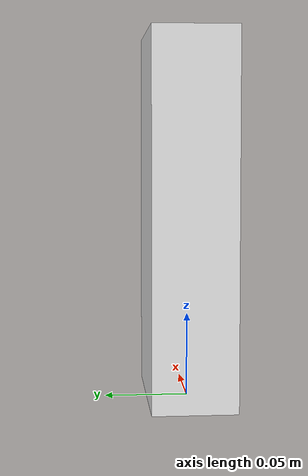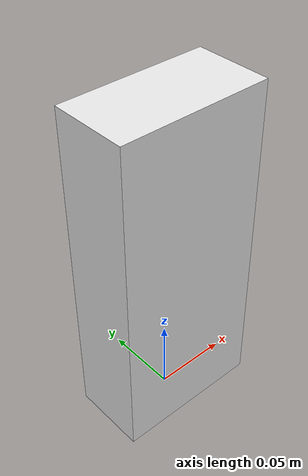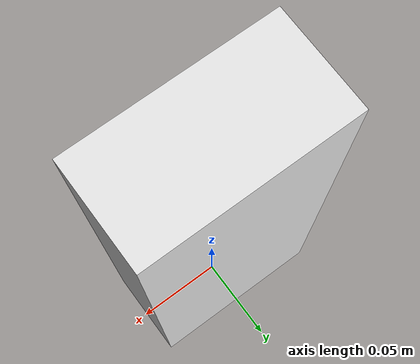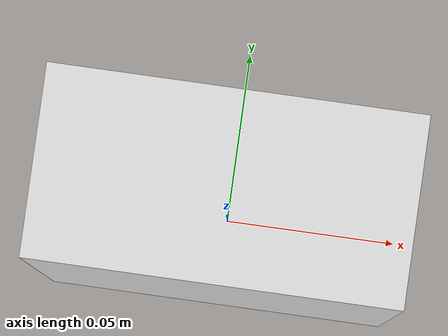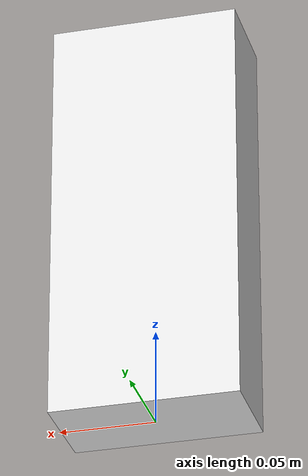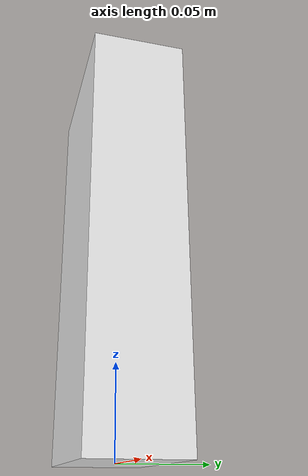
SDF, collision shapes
<?xml version="1.0"?>
<sdf version='1.6'>
<model name="simple_cuboid">
  <link name="base_link_bottle">
    <pose frame=''>0 0 0 0 -0 0</pose>
      <inertial>
        <pose frame=''>0 0 0.125 0 -0 0</pose>
        <mass>1.1</mass>
        <inertia>
          <ixx>0.0061</ixx>
          <ixy>0</ixy>
          <ixz>0</ixz>
          <iyy>0.0066</iyy>
          <iyz>0</iyz>
          <izz>0.0013</izz>
        </inertia>
      </inertial>

    <visual name='pedestal_visual'>
      <pose frame=''>-0.02 0.012 0 0 0 3.14159</pose>
      <geometry>
        <mesh>
          <scale>1 1 1</scale>
          <uri>textures/021_bleach_clenser.obj</uri>
        </mesh>
      </geometry>
      <material>
        <diffuse>0.9 0.9 0.9 0.9</diffuse>
      </material>
    </visual>

    <collision name='box_collision'>
      <pose frame=''>0 0 0.11 0 0 0</pose>
      <geometry>
        <box>
          <size>0.098 0.05 0.22</size>
        </box>
      </geometry>
    </collision>

    <collision name='point_collision1'>
      <pose frame=''>0.049 0.025 0 0 0 0</pose>
      <geometry>
        <sphere><radius>1e-7</radius></sphere>
      </geometry>
    </collision>
    <collision name='point_collision2'>
      <pose frame=''>0.049 -0.025 0 0 0 0</pose>
      <geometry>
        <sphere><radius>1e-7</radius></sphere>
      </geometry>
    </collision>
    <collision name='point_collision3'>
      <pose frame=''>-0.049 -0.025 0 0 0 0</pose>
      <geometry>
        <sphere><radius>1e-7</radius></sphere>
      </geometry>
    </collision>
    <collision name='point_collision4'>
      <pose frame=''>-0.049 0.025 0 0 0 0</pose>
      <geometry>
        <sphere><radius>1e-7</radius></sphere>
      </geometry>
    </collision>

   </link>
</model>
</sdf>
